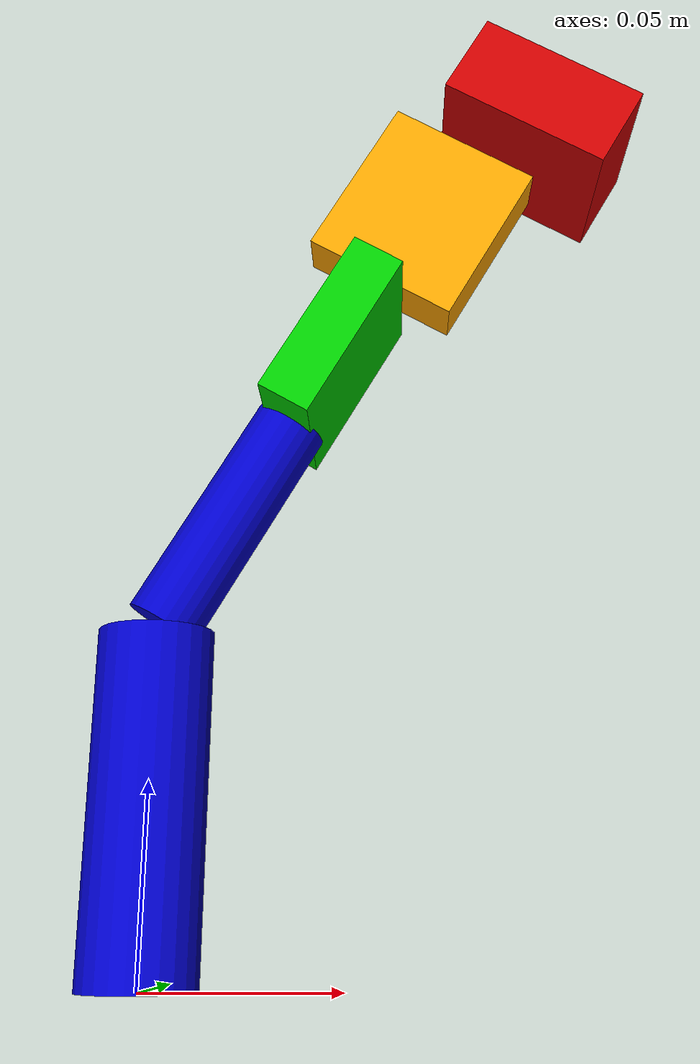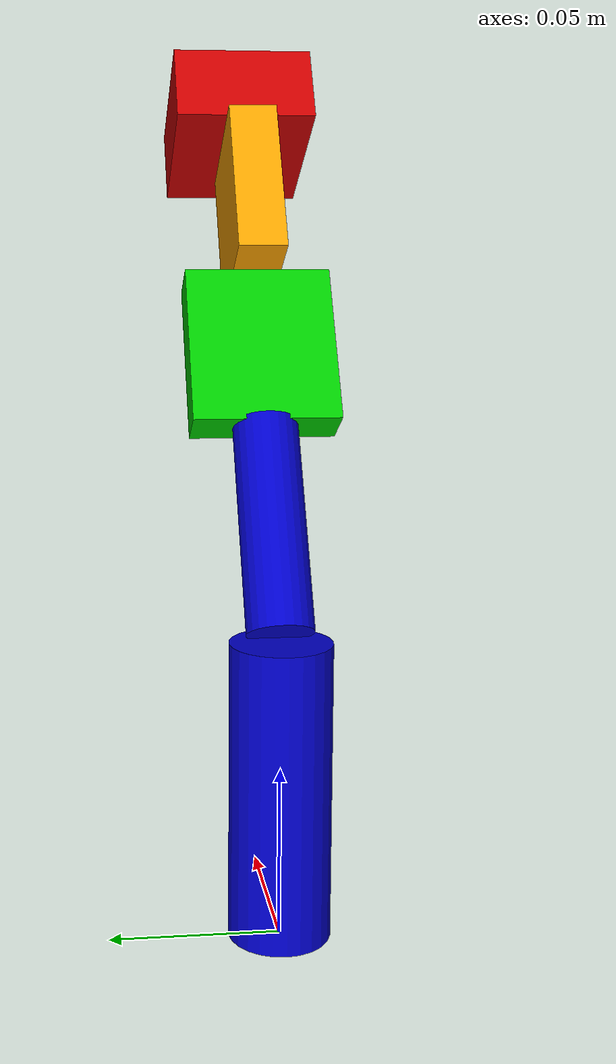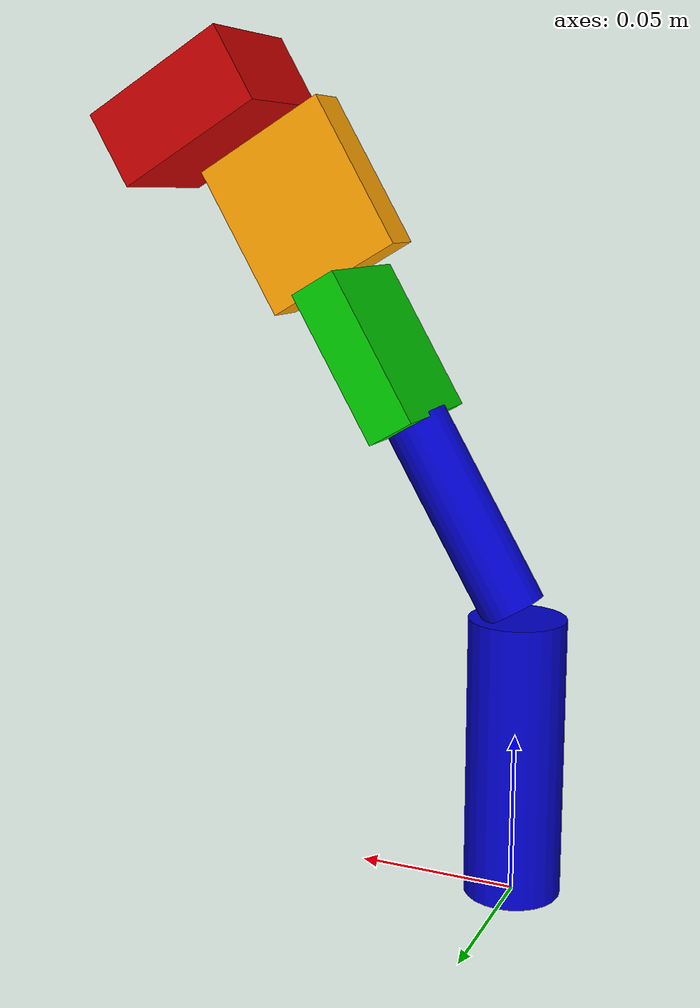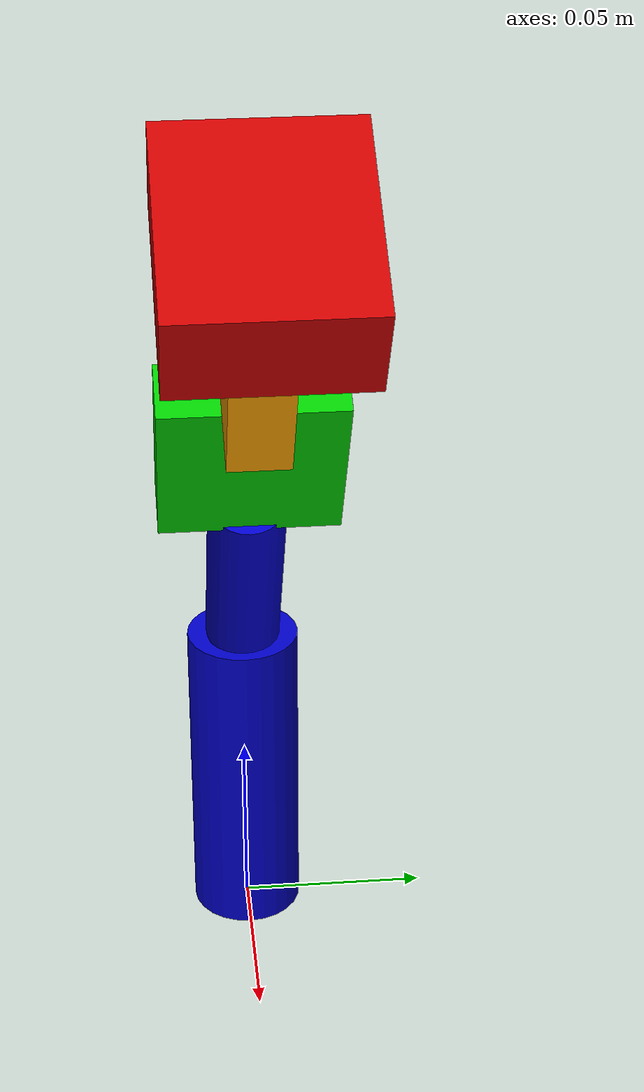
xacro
<?xml version="1.0"?>
<robot xmlns:xacro="http://www.ros.org/wiki/xacro" name="gaze_arm">
  <link name="world" />

  <joint name="world_joint" type="fixed">
    <parent link="world"/>
    <child link="base_link"/>
  </joint>

  <xacro:property name="pi" value="3.1415926535897931" />
  <xacro:macro name="default_inertial" params="mass origin_xyz">
    <inertial>
      <mass value="${mass}" />
      <origin xyz="${origin_xyz}" />
      <inertia ixx="1.0" ixy="0.0" ixz="0.0"
                         iyy="1.0" iyz="0.0"
                                   izz="1.0" />
    </inertial>
  </xacro:macro>

  <link name="base_link">
    <visual>
      <origin xyz="0 0 0.044" rpy="0 0 0" />
      <geometry>
        <cylinder radius="0.015" length="0.088" />
      </geometry>
      <material name="blue">
        <color rgba="0 0 .8 1" />
      </material>
    </visual>

    <collision>
      <origin xyz="0 0 0.044" rpy="0 0 0" />
      <geometry>
        <cylinder radius="0.015" length="0.088" />
      </geometry>
    </collision>

    <xacro:default_inertial mass="0.03" origin_xyz="0 0 0.044" />
  </link>
  <gazebo reference="base_link">
    <material>Gazebo/Blue</material>
  </gazebo>

  <joint name="joint0" type="fixed">
    <parent link="base_link"/>
    <child link="link1"/>
    <origin xyz="0 0 0.088" rpy="0 ${pi/6.} 0" />
    <axis xyz="0 1 0" />
  </joint>

  <link name="link1">
    <visual>
      <origin xyz="0 0 0.035" rpy="0 0 0" />
      <geometry>
        <cylinder radius="0.01" length="0.065" />
      </geometry>
      <material name="blue" />
    </visual>

    <collision>
      <origin xyz="0 0 0.035" rpy="0 0 0" />
      <geometry>
        <cylinder radius="0.01" length="0.065" />
      </geometry>
    </collision>

    <xacro:default_inertial mass="0.03" origin_xyz="0 0 0.035" />
  </link>
  <gazebo reference="link1">
    <material>Gazebo/Blue</material>
  </gazebo>

  <joint name="joint1" type="revolute">
    <parent link="link1"/>
    <child link="link2"/>
    <origin xyz="0 0 0.086" rpy="0 0 0" />
    <axis xyz="0 1 0" />
    <limit lower="-${pi/2.}" upper="${pi/2.}" effort="0.5293" velocity="6.159937255" />
    <dynamics damping="0.4" />
  </joint>
  <transmission name="trans1">
    <type>transmission_interface/SimpleTransmission</type>
    <joint name="joint1">
      <hardwareInterface>EffortJointInterface</hardwareInterface>
    </joint>
    <actuator name="motor1">
       <hardwareInterface>EffortJointInterface</hardwareInterface>
       <mechanismReduction>1</mechanismReduction>
    </actuator>
  </transmission>

  <link name="link2">
    <visual>
      <origin xyz="0 0 0.005" rpy="0 0 0" />
      <geometry>
        <box size="0.015 0.045 0.05" />
      </geometry>
      <material name="green">
        <color rgba="0 .8 0 1" />
      </material>
    </visual>

    <collision>
      <origin xyz="0 0 0.005" rpy="0 0 0" />
      <geometry>
        <box size="0.015 0.045 0.035" />
      </geometry>
    </collision>

    <xacro:default_inertial mass="0.04" origin_xyz="0 0 0.005" />
  </link>
  <gazebo reference="link2">
    <material>Gazebo/Green</material>
  </gazebo>

  <joint name="joint2" type="revolute">
    <parent link="link2"/>
    <child link="link3"/>
    <origin xyz="0 0 0.06" rpy="0 0 0" />
    <axis xyz="1 0 0" />
    <limit lower="-${pi/3.}" upper="${pi/3.}" effort="0.5293" velocity="6.159937255" />
    <dynamics damping="0.4" />
  </joint>
  <transmission name="trans2">
    <type>transmission_interface/SimpleTransmission</type>
    <joint name="joint2">
      <hardwareInterface>EffortJointInterface</hardwareInterface>
    </joint>
    <actuator name="motor2">
       <hardwareInterface>EffortJointInterface</hardwareInterface>
       <mechanismReduction>1</mechanismReduction>
    </actuator>
  </transmission>

  <link name="link3">
    <visual>
      <origin xyz="0 0 -0.005" rpy="0 0 0" />
      <geometry>
        <box size="0.045 0.015 0.05" />
      </geometry>
      <material name="orange">
        <color rgba="1 .64 0 1" />
      </material>
    </visual>

    <collision>
      <origin xyz="0 0 -0.005" rpy="0 0 0" />
      <geometry>
        <box size="0.045 0.015 0.05" />
      </geometry>
    </collision>

    <xacro:default_inertial mass="0.04" origin_xyz="0 0 -0.005" />
  </link>
  <gazebo reference="link3">
    <material>Gazebo/Orange</material>
  </gazebo>

  <joint name="camera_joint" type="fixed">
    <parent link="link3"/>
    <child link="camera_link"/>
    <origin xyz="0.015 0 0.025" rpy="0 0 0" />
  </joint>

  <link name="camera_link">
    <visual>
      <origin xyz="0 0 0.0125" rpy="0 0 0" />
      <geometry>
        <box size="0.05 0.045 0.025" />
      </geometry>
      <material name="red">
        <color rgba=".8 0 0 1" />
      </material>
    </visual>

    <collision>
      <origin xyz="0 0 0.0125" rpy="0 0 0" />
      <geometry>
        <box size="0.05 0.045 0.025" />
      </geometry>
    </collision>

    <xacro:default_inertial mass="0.04" origin_xyz="0 0 0.0125" />
  </link>
  <gazebo reference="camera_link">
    <material>Gazebo/Red</material>
    <sensor type="camera" name="tip_camera">
      <update_rate>30.0</update_rate>
      <camera name="tip_camera">
        <horizontal_fov>1.3962634</horizontal_fov>
        <image>
          <width>640</width>
          <height>480</height>
          <format>R8G8B8</format>
        </image>
        <clip>
          <near>0.05</near>
          <far>500</far>
        </clip>
        <noise>
          <type>gaussian</type>
          <mean>0.0</mean>
          <stddev>0.005</stddev>
        </noise>
      </camera>
      <plugin name="camera_controller" filename="libgazebo_ros_camera.so">
        <alwaysOn>true</alwaysOn>
        <updateRate>0.0</updateRate>
        <cameraName>gaze_arm/tip_camera</cameraName>
        <imageTopicName>image_raw</imageTopicName>
        <cameraInfoTopicName>camera_info</cameraInfoTopicName>
        <frameName>camera_link</frameName>
        <hackBaseline>0.07</hackBaseline>
        <distortionK1>0.0</distortionK1>
        <distortionK2>0.0</distortionK2>
        <distortionK3>0.0</distortionK3>
        <distortionT1>0.0</distortionT1>
        <distortionT2>0.0</distortionT2>
      </plugin>
    </sensor>
  </gazebo>

  <gazebo>
    <plugin name="gazebo_ros_control" filename="libgazebo_ros_control.so">
      <robotNamespace>/gaze_arm</robotNamespace>
    </plugin>
  </gazebo>

</robot>
